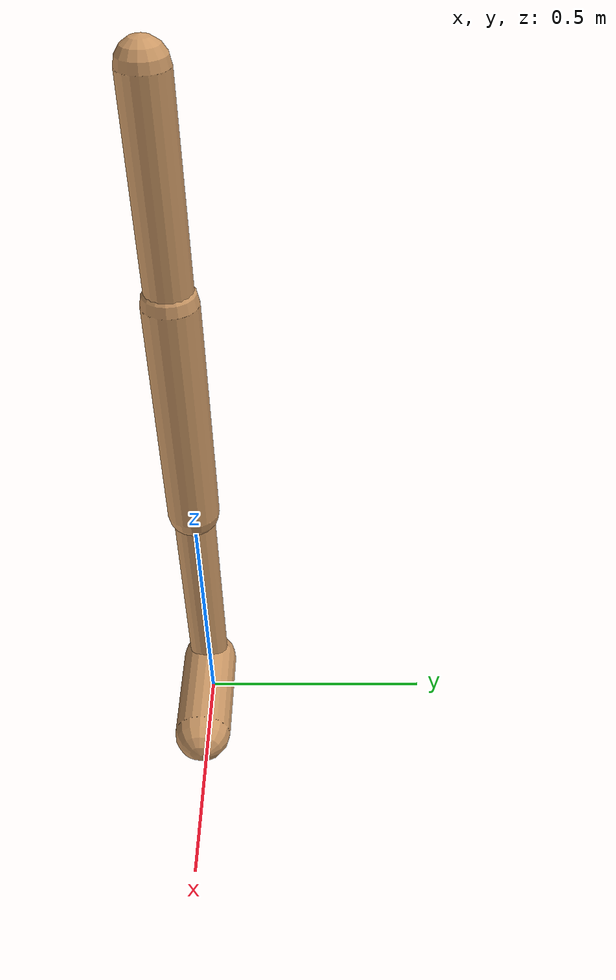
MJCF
<mujoco model="walker2d">
  <compiler angle="degree" coordinate="global" inertiafromgeom="true" />
  <default>
    <joint armature="0.01" damping=".1" limited="true" />
    <geom conaffinity="0" condim="3" contype="1" density="1000" friction="0.8 .1 .1" rgba="0.8 0.6 .4 1" />
  </default>
  <option integrator="RK4" timestep="0.002" />
  <worldbody>

    <body name="torso" pos="0 0 0.07064708207236303">
      <joint armature="0" axis="1 0 0" damping="0" limited="false" name="ignorex" pos="0 0 0" stiffness="0" type="slide" />
      <joint armature="0" axis="0 0 1" damping="0" limited="false" name="ignorez" pos="0 0 0" ref="1.25" stiffness="0" type="slide" />
      <joint armature="0" axis="0 1 0" damping="0" limited="false" name="ignorey" pos="0 0 0" stiffness="0" type="hinge" />
      <geom fromto="0 0 1.45 0 0 1.05" name="torso_geom" size="0.04528531662973995" type="capsule" />
      <body name="thigh">
        <joint axis="0 -1 0" name="thigh_joint" pos="0 0 1.05" range="-150 0" type="hinge" />
        <geom fromto="0.0 0.0 1.05 0.0 0.0 0.5665355927025648" name="thigh_geom" size="0.05361648278076896" type="capsule" />
        <body name="leg" pos="0.0 0.0 -0.03346440729743516">
          <joint axis="0 -1 0" name="leg_joint" pos="0 0 0.6" range="-150 0" type="hinge" />
          <geom fromto="0.0 0.0 0.6 0.0 0.0 0.06281732522507211" name="leg_geom" size="0.04289318622461517" type="capsule" />
          <body name="foot" pos="0.0 0.0 -0.0371826747749279">
            <joint axis="0 -1 0" name="foot_joint" pos="0 0 0.1" range="-45 45" type="hinge" />
            <geom fromto="-0.0 0.0 0.1 0.21988525083089835 0.0 0.1" name="foot_geom" size="0.060954629690488246" type="capsule" />
          </body>
        </body>
      </body>

      <body name="thigh_left">
        <joint axis="0 -1 0" name="thigh_left_joint" pos="0 0 1.05" range="-150 0" type="hinge" />
        <geom fromto="0.0 0.0 1.05 0.0 0.0 0.5665355927025648" name="thigh_left_geom" rgba=".7 .3 .6 1" size="0.05361648278076896" type="capsule" />
        <body name="leg_left" pos="0.0 0.0 -0.03346440729743516">
          <joint axis="0 -1 0" name="leg_left_joint" pos="0 0 0.6" range="-150 0" type="hinge" />
          <geom fromto="0.0 0.0 0.6 0.0 0.0 0.06281732522507211" name="leg_left_geom" rgba=".7 .3 .6 1" size="0.04289318622461517" type="capsule" />
          <body name="foot_left" pos="0.0 0.0 -0.0371826747749279">
            <joint axis="0 -1 0" name="foot_left_joint" pos="0 0 0.1" range="-45 45" type="hinge" />
            <geom fromto="-0.0 0.0 0.1 0.21988525083089835 0.0 0.1" name="foot_left_geom" rgba=".7 .3 .6 1" size="0.060954629690488246" type="capsule" />
          </body>
        </body>
      </body>
    </body>
  </worldbody>
  <actuator>

    <motor ctrllimited="true" ctrlrange="-1.0 1.0" gear="100" joint="thigh_joint" />
    <motor ctrllimited="true" ctrlrange="-1.0 1.0" gear="100" joint="leg_joint" />
    <motor ctrllimited="true" ctrlrange="-1.0 1.0" gear="100" joint="foot_joint" />
    <motor ctrllimited="true" ctrlrange="-1.0 1.0" gear="100" joint="thigh_left_joint" />
    <motor ctrllimited="true" ctrlrange="-1.0 1.0" gear="100" joint="leg_left_joint" />
    <motor ctrllimited="true" ctrlrange="-1.0 1.0" gear="100" joint="foot_left_joint" />

  </actuator>
</mujoco>
